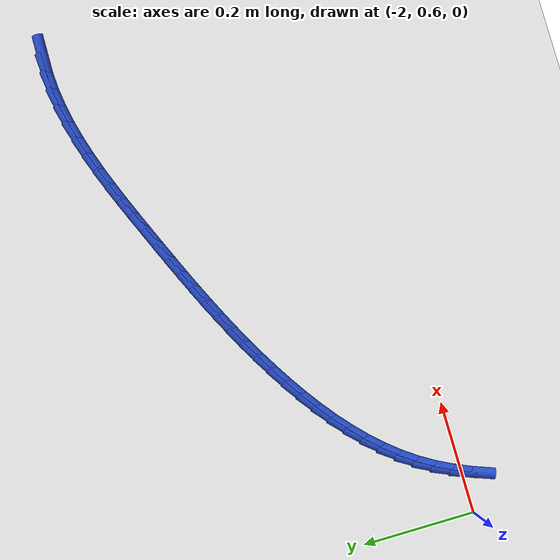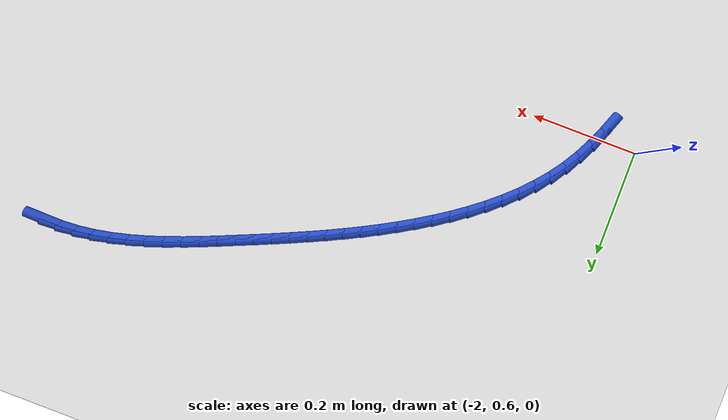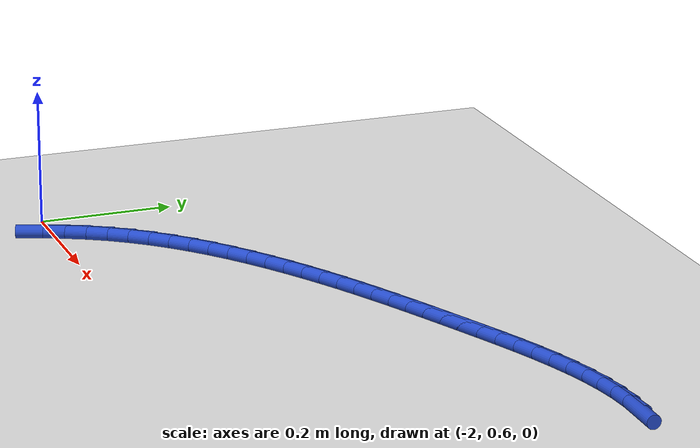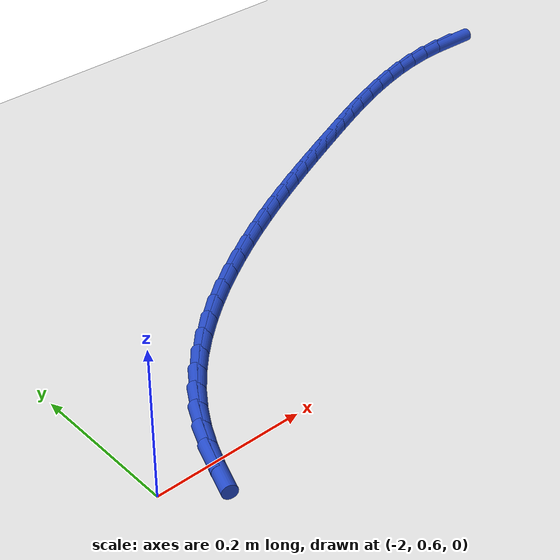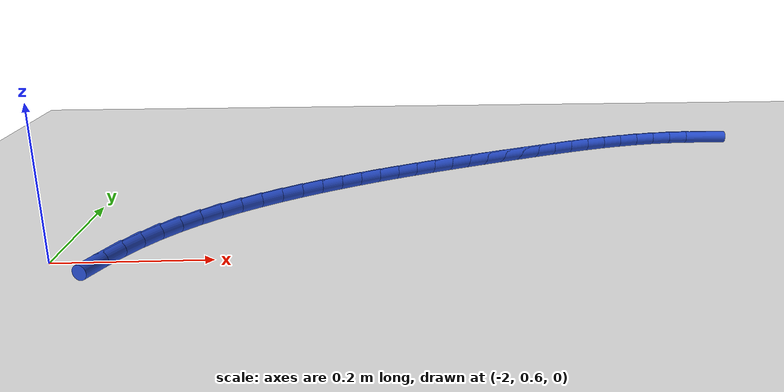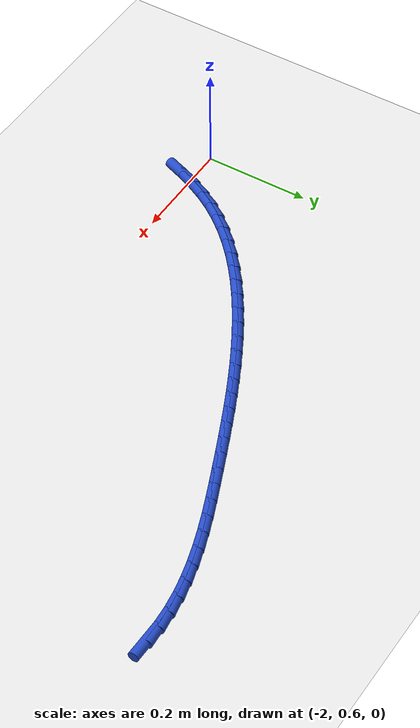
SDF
<sdf version="1.6">
 <world name="default">
  <model name="ground_plane">
   <static>1</static>
   <link name="link">
    <collision name="collision">
     <geometry><plane><normal>0 0 1</normal><size>100 100</size></plane></geometry>
     <surface><friction><ode><mu>100</mu><mu2>50</mu2></ode></friction></surface>
    </collision>
    <visual name="visual">
     <cast_shadows>0</cast_shadows>
     <geometry><plane><normal>0 0 1</normal><size>100 100</size></plane></geometry>
     <material>
      <script><uri>file://media/materials/scripts/gazebo.material</uri><name>Gazebo/WhiteGlow</name></script>
     </material>
    </visual>
   </link>
  </model>
  <model name="line">
   <link name="link_49">
    <pose>-1.0189374366607247 1.1025419869664297 0.01 0 1.57 -0.01900978827725867</pose>
    <collision name="collision">
     <geometry><cylinder><radius>0.01</radius><length>0.08</length></cylinder></geometry>
    </collision>
    <visual name="visual">
     <material>
      <script><name>Gazebo/Blue</name><uri>file://media/materials/scripts/gazebo.material</uri></script>
     </material>
     <geometry><cylinder><radius>0.01</radius><length>0.08</length></cylinder></geometry>
    </visual>
   </link>
   <link name="link_50">
    <pose>-1.0508738815127714 1.103149165162234 0.01 0 1.57 0.06109472374575914</pose>
    <collision name="collision">
     <geometry><cylinder><radius>0.01</radius><length>0.08</length></cylinder></geometry>
    </collision>
    <visual name="visual">
     <material>
      <script><name>Gazebo/Blue</name><uri>file://media/materials/scripts/gazebo.material</uri></script>
     </material>
     <geometry><cylinder><radius>0.01</radius><length>0.08</length></cylinder></geometry>
    </visual>
   </link>
   <link name="link_51">
    <pose>-1.082924957124097 1.1011885735994638 0.01 0 1.57 0.13202396310217762</pose>
    <collision name="collision">
     <geometry><cylinder><radius>0.01</radius><length>0.08</length></cylinder></geometry>
    </collision>
    <visual name="visual">
     <material>
      <script><name>Gazebo/Blue</name><uri>file://media/materials/scripts/gazebo.material</uri></script>
     </material>
     <geometry><cylinder><radius>0.01</radius><length>0.08</length></cylinder></geometry>
    </visual>
   </link>
   <link name="link_52">
    <pose>-1.1150457019483202 1.0969230535875685 0.01 0 1.57 0.19375910922811515</pose>
    <collision name="collision">
     <geometry><cylinder><radius>0.01</radius><length>0.08</length></cylinder></geometry>
    </collision>
    <visual name="visual">
     <material>
      <script><name>Gazebo/Blue</name><uri>file://media/materials/scripts/gazebo.material</uri></script>
     </material>
     <geometry><cylinder><radius>0.01</radius><length>0.08</length></cylinder></geometry>
    </visual>
   </link>
   <link name="link_53">
    <pose>-1.1471911544390598 1.090615446435997 0.01 0 1.57 0.24660555343838492</pose>
    <collision name="collision">
     <geometry><cylinder><radius>0.01</radius><length>0.08</length></cylinder></geometry>
    </collision>
    <visual name="visual">
     <material>
      <script><name>Gazebo/Blue</name><uri>file://media/materials/scripts/gazebo.material</uri></script>
     </material>
     <geometry><cylinder><radius>0.01</radius><length>0.08</length></cylinder></geometry>
    </visual>
   </link>
   <link name="link_54">
    <pose>-1.1793163530499342 1.0825285934541986 0.01 0 1.57 0.2910350129425921</pose>
    <collision name="collision">
     <geometry><cylinder><radius>0.01</radius><length>0.08</length></cylinder></geometry>
    </collision>
    <visual name="visual">
     <material>
      <script><name>Gazebo/Blue</name><uri>file://media/materials/scripts/gazebo.material</uri></script>
     </material>
     <geometry><cylinder><radius>0.01</radius><length>0.08</length></cylinder></geometry>
    </visual>
   </link>
   <link name="link_55">
    <pose>-1.2113763362345604 1.072925335951621 0.01 0 1.57 0.3275669802625318</pose>
    <collision name="collision">
     <geometry><cylinder><radius>0.01</radius><length>0.08</length></cylinder></geometry>
    </collision>
    <visual name="visual">
     <material>
      <script><name>Gazebo/Blue</name><uri>file://media/materials/scripts/gazebo.material</uri></script>
     </material>
     <geometry><cylinder><radius>0.01</radius><length>0.08</length></cylinder></geometry>
    </visual>
   </link>
   <link name="link_56">
    <pose>-1.243326142446559 1.062068515237715 0.01 0 1.57 0.3566883613919532</pose>
    <collision name="collision">
     <geometry><cylinder><radius>0.01</radius><length>0.08</length></cylinder></geometry>
    </collision>
    <visual name="visual">
     <material>
      <script><name>Gazebo/Blue</name><uri>file://media/materials/scripts/gazebo.material</uri></script>
     </material>
     <geometry><cylinder><radius>0.01</radius><length>0.08</length></cylinder></geometry>
    </visual>
   </link>
   <link name="link_57">
    <pose>-1.2751208101395468 1.0502209726219283 0.01 0 1.57 0.3788025073321599</pose>
    <collision name="collision">
     <geometry><cylinder><radius>0.01</radius><length>0.08</length></cylinder></geometry>
    </collision>
    <visual name="visual">
     <material>
      <script><name>Gazebo/Blue</name><uri>file://media/materials/scripts/gazebo.material</uri></script>
     </material>
     <geometry><cylinder><radius>0.01</radius><length>0.08</length></cylinder></geometry>
    </visual>
   </link>
   <link name="link_58">
    <pose>-1.3067153777671427 1.03764554941371 0.01 0 1.57 0.39419759387340697</pose>
    <collision name="collision">
     <geometry><cylinder><radius>0.01</radius><length>0.08</length></cylinder></geometry>
    </collision>
    <visual name="visual">
     <material>
      <script><name>Gazebo/Blue</name><uri>file://media/materials/scripts/gazebo.material</uri></script>
     </material>
     <geometry><cylinder><radius>0.01</radius><length>0.08</length></cylinder></geometry>
    </visual>
   </link>
   <link name="link_59">
    <pose>-1.3380648837829656 1.0246050869225096 0.01 0 1.57 0.40302581201148924</pose>
    <collision name="collision">
     <geometry><cylinder><radius>0.01</radius><length>0.08</length></cylinder></geometry>
    </collision>
    <visual name="visual">
     <material>
      <script><name>Gazebo/Blue</name><uri>file://media/materials/scripts/gazebo.material</uri></script>
     </material>
     <geometry><cylinder><radius>0.01</radius><length>0.08</length></cylinder></geometry>
    </visual>
   </link>
   <link name="link_60">
    <pose>-1.3691243666406332 1.0113624264577754 0.01 0 1.57 0.40665078527565607</pose>
    <collision name="collision">
     <geometry><cylinder><radius>0.01</radius><length>0.08</length></cylinder></geometry>
    </collision>
    <visual name="visual">
     <material>
      <script><name>Gazebo/Blue</name><uri>file://media/materials/scripts/gazebo.material</uri></script>
     </material>
     <geometry><cylinder><radius>0.01</radius><length>0.08</length></cylinder></geometry>
    </visual>
   </link>
   <link name="link_61">
    <pose>-1.3998582252499585 0.9981267340602188 0.01 0 1.57 0.411070220496507</pose>
    <collision name="collision">
     <geometry><cylinder><radius>0.01</radius><length>0.08</length></cylinder></geometry>
    </collision>
    <visual name="visual">
     <material>
      <script><name>Gazebo/Blue</name><uri>file://media/materials/scripts/gazebo.material</uri></script>
     </material>
     <geometry><cylinder><radius>0.01</radius><length>0.08</length></cylinder></geometry>
    </visual>
   </link>
   <link name="link_62">
    <pose>-1.430272380800815 0.9848690763131025 0.01 0 1.57 0.41798846260027633</pose>
    <collision name="collision">
     <geometry><cylinder><radius>0.01</radius><length>0.08</length></cylinder></geometry>
    </collision>
    <visual name="visual">
     <material>
      <script><name>Gazebo/Blue</name><uri>file://media/materials/scripts/gazebo.material</uri></script>
     </material>
     <geometry><cylinder><radius>0.01</radius><length>0.08</length></cylinder></geometry>
    </visual>
   </link>
   <link name="link_63">
    <pose>-1.4603842639430518 0.9714945215893146 0.01 0 1.57 0.42742297531845763</pose>
    <collision name="collision">
     <geometry><cylinder><radius>0.01</radius><length>0.08</length></cylinder></geometry>
    </collision>
    <visual name="visual">
     <material>
      <script><name>Gazebo/Blue</name><uri>file://media/materials/scripts/gazebo.material</uri></script>
     </material>
     <geometry><cylinder><radius>0.01</radius><length>0.08</length></cylinder></geometry>
    </visual>
   </link>
   <link name="link_64">
    <pose>-1.4902113057519284 0.9579081358223225 0.01 0 1.57 0.43936432452164415</pose>
    <collision name="collision">
     <geometry><cylinder><radius>0.01</radius><length>0.08</length></cylinder></geometry>
    </collision>
    <visual name="visual">
     <material>
      <script><name>Gazebo/Blue</name><uri>file://media/materials/scripts/gazebo.material</uri></script>
     </material>
     <geometry><cylinder><radius>0.01</radius><length>0.08</length></cylinder></geometry>
    </visual>
   </link>
   <link name="link_65">
    <pose>-1.5197709373027033 0.9440149849455926 0.01 0 1.57 0.45377395870528564</pose>
    <collision name="collision">
     <geometry><cylinder><radius>0.01</radius><length>0.08</length></cylinder></geometry>
    </collision>
    <visual name="visual">
     <material>
      <script><name>Gazebo/Blue</name><uri>file://media/materials/scripts/gazebo.material</uri></script>
     </material>
     <geometry><cylinder><radius>0.01</radius><length>0.08</length></cylinder></geometry>
    </visual>
   </link>
   <link name="link_66">
    <pose>-1.5490805896706377 0.9297201348925915 0.01 0 1.57 0.47058227792671764</pose>
    <collision name="collision">
     <geometry><cylinder><radius>0.01</radius><length>0.08</length></cylinder></geometry>
    </collision>
    <visual name="visual">
     <material>
      <script><name>Gazebo/Blue</name><uri>file://media/materials/scripts/gazebo.material</uri></script>
     </material>
     <geometry><cylinder><radius>0.01</radius><length>0.08</length></cylinder></geometry>
    </visual>
   </link>
   <link name="link_67">
    <pose>-1.5781576939309907 0.9149286515967868 0.01 0 1.57 0.4896872897319653</pose>
    <collision name="collision">
     <geometry><cylinder><radius>0.01</radius><length>0.08</length></cylinder></geometry>
    </collision>
    <visual name="visual">
     <material>
      <script><name>Gazebo/Blue</name><uri>file://media/materials/scripts/gazebo.material</uri></script>
     </material>
     <geometry><cylinder><radius>0.01</radius><length>0.08</length></cylinder></geometry>
    </visual>
   </link>
   <link name="link_68">
    <pose>-1.6070196811590216 0.8995456009916449 0.01 0 1.57 0.51095411464108</pose>
    <collision name="collision">
     <geometry><cylinder><radius>0.01</radius><length>0.08</length></cylinder></geometry>
    </collision>
    <visual name="visual">
     <material>
      <script><name>Gazebo/Blue</name><uri>file://media/materials/scripts/gazebo.material</uri></script>
     </material>
     <geometry><cylinder><radius>0.01</radius><length>0.08</length></cylinder></geometry>
    </visual>
   </link>
   <link name="link_69">
    <pose>-1.6356839824299905 0.8834760490106328 0.01 0 1.57 0.5342158809843386</pose>
    <collision name="collision">
     <geometry><cylinder><radius>0.01</radius><length>0.08</length></cylinder></geometry>
    </collision>
    <visual name="visual">
     <material>
      <script><name>Gazebo/Blue</name><uri>file://media/materials/scripts/gazebo.material</uri></script>
     </material>
     <geometry><cylinder><radius>0.01</radius><length>0.08</length></cylinder></geometry>
    </visual>
   </link>
   <link name="link_70">
    <pose>-1.6641680013082867 0.866625067010155 0.01 0 1.57 0.5598283403920468</pose>
    <collision name="collision">
     <geometry><cylinder><radius>0.01</radius><length>0.08</length></cylinder></geometry>
    </collision>
    <visual name="visual">
     <material>
      <script><name>Gazebo/Blue</name><uri>file://media/materials/scripts/gazebo.material</uri></script>
     </material>
     <geometry><cylinder><radius>0.01</radius><length>0.08</length></cylinder></geometry>
    </visual>
   </link>
   <link name="link_71">
    <pose>-1.6924383648062284 0.8489077354120221 0.01 0 1.57 0.5894820347865831</pose>
    <collision name="collision">
     <geometry><cylinder><radius>0.01</radius><length>0.08</length></cylinder></geometry>
    </collision>
    <visual name="visual">
     <material>
      <script><name>Gazebo/Blue</name><uri>file://media/materials/scripts/gazebo.material</uri></script>
     </material>
     <geometry><cylinder><radius>0.01</radius><length>0.08</length></cylinder></geometry>
    </visual>
   </link>
   <link name="link_72">
    <pose>-1.7203057350199529 0.8302698784160938 0.01 0 1.57 0.6237845769787325</pose>
    <collision name="collision">
     <geometry><cylinder><radius>0.01</radius><length>0.08</length></cylinder></geometry>
    </collision>
    <visual name="visual">
     <material>
      <script><name>Gazebo/Blue</name><uri>file://media/materials/scripts/gazebo.material</uri></script>
     </material>
     <geometry><cylinder><radius>0.01</radius><length>0.08</length></cylinder></geometry>
    </visual>
   </link>
   <link name="link_73">
    <pose>-1.7475509277032315 0.8106632035282172 0.01 0 1.57 0.6631040274777865</pose>
    <collision name="collision">
     <geometry><cylinder><radius>0.01</radius><length>0.08</length></cylinder></geometry>
    </collision>
    <visual name="visual">
     <material>
      <script><name>Gazebo/Blue</name><uri>file://media/materials/scripts/gazebo.material</uri></script>
     </material>
     <geometry><cylinder><radius>0.01</radius><length>0.08</length></cylinder></geometry>
    </visual>
   </link>
   <link name="link_74">
    <pose>-1.7739547586098352 0.7900394182542398 0.01 0 1.57 0.7078608640077166</pose>
    <collision name="collision">
     <geometry><cylinder><radius>0.01</radius><length>0.08</length></cylinder></geometry>
    </collision>
    <visual name="visual">
     <material>
      <script><name>Gazebo/Blue</name><uri>file://media/materials/scripts/gazebo.material</uri></script>
     </material>
     <geometry><cylinder><radius>0.01</radius><length>0.08</length></cylinder></geometry>
    </visual>
   </link>
   <link name="link_75">
    <pose>-1.7992980434935357 0.7683502301000098 0.01 0 1.57 0.7585054186711943</pose>
    <collision name="collision">
     <geometry><cylinder><radius>0.01</radius><length>0.08</length></cylinder></geometry>
    </collision>
    <visual name="visual">
     <material>
      <script><name>Gazebo/Blue</name><uri>file://media/materials/scripts/gazebo.material</uri></script>
     </material>
     <geometry><cylinder><radius>0.01</radius><length>0.08</length></cylinder></geometry>
    </visual>
   </link>
   <link name="link_76">
    <pose>-1.8233615981081028 0.7455473465713736 0.01 0 1.57 0.8154824860852472</pose>
    <collision name="collision">
     <geometry><cylinder><radius>0.01</radius><length>0.08</length></cylinder></geometry>
    </collision>
    <visual name="visual">
     <material>
      <script><name>Gazebo/Blue</name><uri>file://media/materials/scripts/gazebo.material</uri></script>
     </material>
     <geometry><cylinder><radius>0.01</radius><length>0.08</length></cylinder></geometry>
    </visual>
   </link>
   <link name="link_77">
    <pose>-1.8459262382073094 0.7215824751741793 0.01 0 1.57 0.8791781418823175</pose>
    <collision name="collision">
     <geometry><cylinder><radius>0.01</radius><length>0.08</length></cylinder></geometry>
    </collision>
    <visual name="visual">
     <material>
      <script><name>Gazebo/Blue</name><uri>file://media/materials/scripts/gazebo.material</uri></script>
     </material>
     <geometry><cylinder><radius>0.01</radius><length>0.08</length></cylinder></geometry>
    </visual>
   </link>
   <link name="link_78">
    <pose>-1.866772779544926 0.6964073234142744 0.01 0 1.57 0.9498451327724119</pose>
    <collision name="collision">
     <geometry><cylinder><radius>0.01</radius><length>0.08</length></cylinder></geometry>
    </collision>
    <visual name="visual">
     <material>
      <script><name>Gazebo/Blue</name><uri>file://media/materials/scripts/gazebo.material</uri></script>
     </material>
     <geometry><cylinder><radius>0.01</radius><length>0.08</length></cylinder></geometry>
    </visual>
   </link>
   <link name="link_79">
    <pose>-1.8856820378747239 0.6699735987975061 0.01 0 1.57 1.0265497422026193</pose>
    <collision name="collision">
     <geometry><cylinder><radius>0.01</radius><length>0.08</length></cylinder></geometry>
    </collision>
    <visual name="visual">
     <material>
      <script><name>Gazebo/Blue</name><uri>file://media/materials/scripts/gazebo.material</uri></script>
     </material>
     <geometry><cylinder><radius>0.01</radius><length>0.08</length></cylinder></geometry>
    </visual>
   </link>
   <link name="link_80">
    <pose>-1.9024631503951397 0.6422461605799253 0.01 0 1.57 1.0993886387100689</pose>
    <collision name="collision">
     <geometry><cylinder><radius>0.01</radius><length>0.08</length></cylinder></geometry>
    </collision>
    <visual name="visual">
     <material>
      <script><name>Gazebo/Blue</name><uri>file://media/materials/scripts/gazebo.material</uri></script>
     </material>
     <geometry><cylinder><radius>0.01</radius><length>0.08</length></cylinder></geometry>
    </visual>
   </link>
   <link name="link_81">
    <pose>-1.9172074506485233 0.6133209127388967 0.01 0 1.57 1.162405658402163</pose>
    <collision name="collision">
     <geometry><cylinder><radius>0.01</radius><length>0.08</length></cylinder></geometry>
    </collision>
    <visual name="visual">
     <material>
      <script><name>Gazebo/Blue</name><uri>file://media/materials/scripts/gazebo.material</uri></script>
     </material>
     <geometry><cylinder><radius>0.01</radius><length>0.08</length></cylinder></geometry>
    </visual>
   </link>
   <link name="link_82">
    <pose>-1.930168231713936 0.583368969093479 0.01 0 1.57 1.2154452599703611</pose>
    <collision name="collision">
     <geometry><cylinder><radius>0.01</radius><length>0.08</length></cylinder></geometry>
    </collision>
    <visual name="visual">
     <material>
      <script><name>Gazebo/Blue</name><uri>file://media/materials/scripts/gazebo.material</uri></script>
     </material>
     <geometry><cylinder><radius>0.01</radius><length>0.08</length></cylinder></geometry>
    </visual>
   </link>
  </model>
 </world>
</sdf>
